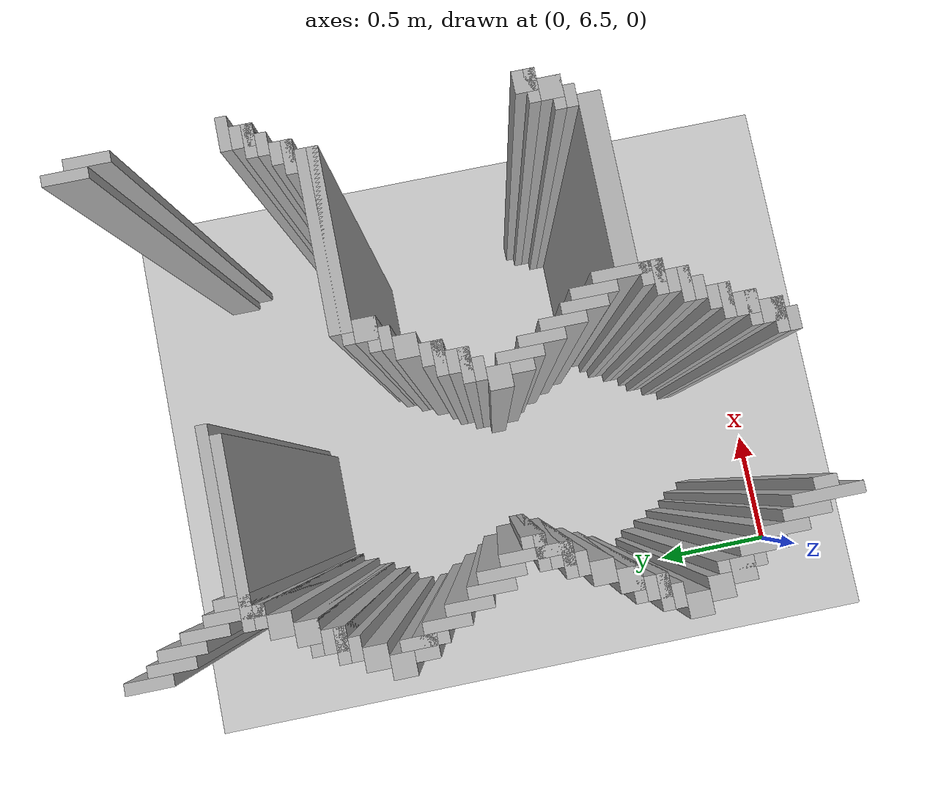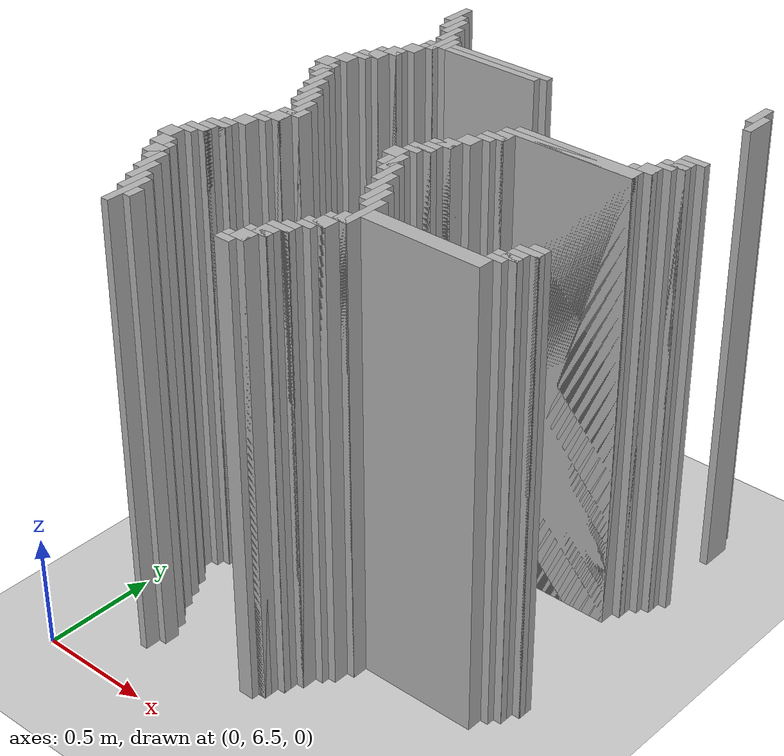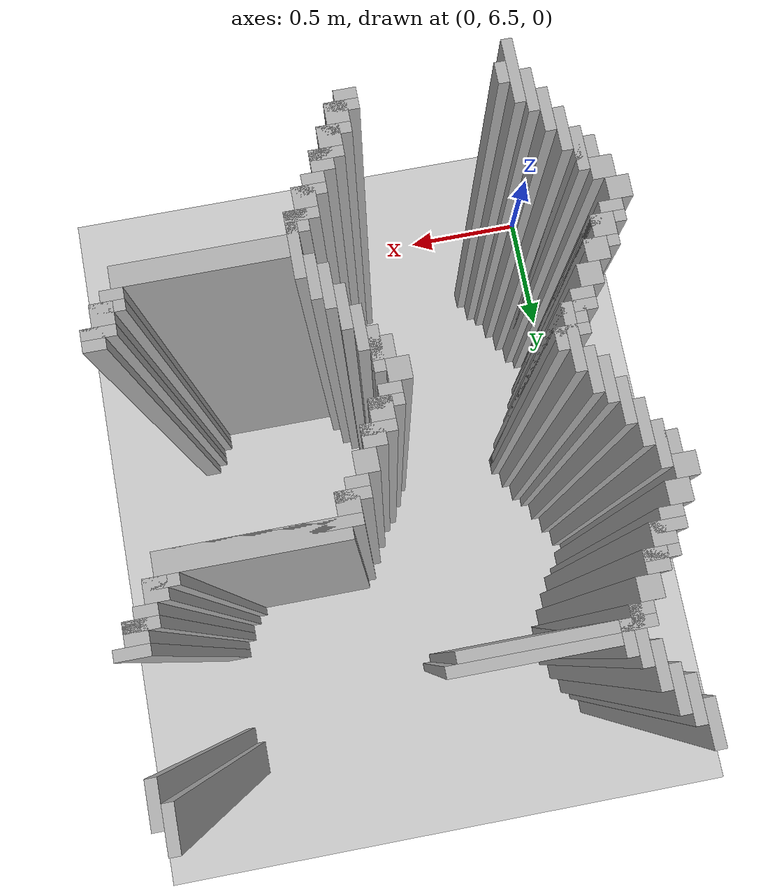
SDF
<sdf version="1.6">
 <world name="slam_world">
  <model name="ground_plane">
   <static>true</static>
   <link name="link">
    <collision name="collision">
     <geometry><plane><normal>0 0 1</normal><size>100 100</size></plane></geometry>
    </collision>
    <visual name="visual">
     <geometry><plane><normal>0 0 1</normal><size>100 100</size></plane></geometry>
     <material>
      <ambient>0.8 0.8 0.8 1</ambient>
      <diffuse>0.8 0.8 0.8 1</diffuse>
      <specular>0.8 0.8 0.8 1</specular>
     </material>
    </visual>
   </link>
  </model>
  <model name="wall_2867">
   <static>true</static>
   <pose>0.15661252900232017 8.77030162412993 1.0 0 0 0</pose>
   <link name="link">
    <collision name="collision">
     <geometry><box><size>0.03480278422273782 0.13921113689095127 2.0</size></box></geometry>
    </collision>
    <visual name="visual">
     <geometry><box><size>0.03480278422273782 0.13921113689095127 2.0</size></box></geometry>
     <material><ambient>0.5 0.5 0.5 1</ambient><diffuse>0.7 0.7 0.7 1</diffuse></material>
    </visual>
   </link>
  </model>
  <model name="wall_2868">
   <static>true</static>
   <pose>1.6183294663573085 8.77030162412993 1.0 0 0 0</pose>
   <link name="link">
    <collision name="collision">
     <geometry><box><size>0.03480278422273782 0.13921113689095127 2.0</size></box></geometry>
    </collision>
    <visual name="visual">
     <geometry><box><size>0.03480278422273782 0.13921113689095127 2.0</size></box></geometry>
     <material><ambient>0.5 0.5 0.5 1</ambient><diffuse>0.7 0.7 0.7 1</diffuse></material>
    </visual>
   </link>
  </model>
  <model name="wall_2880">
   <static>true</static>
   <pose>0.191415313225058 8.700696055684455 1.0 0 0 0</pose>
   <link name="link">
    <collision name="collision">
     <geometry><box><size>0.03480278422273782 0.13921113689095127 2.0</size></box></geometry>
    </collision>
    <visual name="visual">
     <geometry><box><size>0.03480278422273782 0.13921113689095127 2.0</size></box></geometry>
     <material><ambient>0.5 0.5 0.5 1</ambient><diffuse>0.7 0.7 0.7 1</diffuse></material>
    </visual>
   </link>
  </model>
  <model name="wall_2881">
   <static>true</static>
   <pose>1.6531322505800463 8.700696055684455 1.0 0 0 0</pose>
   <link name="link">
    <collision name="collision">
     <geometry><box><size>0.03480278422273782 0.13921113689095127 2.0</size></box></geometry>
    </collision>
    <visual name="visual">
     <geometry><box><size>0.03480278422273782 0.13921113689095127 2.0</size></box></geometry>
     <material><ambient>0.5 0.5 0.5 1</ambient><diffuse>0.7 0.7 0.7 1</diffuse></material>
    </visual>
   </link>
  </model>
  <model name="wall_2893">
   <static>true</static>
   <pose>0.2262180974477958 8.665893271461716 1.0 0 0 0</pose>
   <link name="link">
    <collision name="collision">
     <geometry><box><size>0.03480278422273782 0.13921113689095127 2.0</size></box></geometry>
    </collision>
    <visual name="visual">
     <geometry><box><size>0.03480278422273782 0.13921113689095127 2.0</size></box></geometry>
     <material><ambient>0.5 0.5 0.5 1</ambient><diffuse>0.7 0.7 0.7 1</diffuse></material>
    </visual>
   </link>
  </model>
  <model name="wall_2915">
   <static>true</static>
   <pose>0.2610208816705336 8.596287703016241 1.0 0 0 0</pose>
   <link name="link">
    <collision name="collision">
     <geometry><box><size>0.03480278422273782 0.13921113689095127 2.0</size></box></geometry>
    </collision>
    <visual name="visual">
     <geometry><box><size>0.03480278422273782 0.13921113689095127 2.0</size></box></geometry>
     <material><ambient>0.5 0.5 0.5 1</ambient><diffuse>0.7 0.7 0.7 1</diffuse></material>
    </visual>
   </link>
  </model>
  <model name="wall_2934">
   <static>true</static>
   <pose>0.29582366589327147 8.509280742459396 1.0 0 0 0</pose>
   <link name="link">
    <collision name="collision">
     <geometry><box><size>0.03480278422273782 0.17401392111368907 2.0</size></box></geometry>
    </collision>
    <visual name="visual">
     <geometry><box><size>0.03480278422273782 0.17401392111368907 2.0</size></box></geometry>
     <material><ambient>0.5 0.5 0.5 1</ambient><diffuse>0.7 0.7 0.7 1</diffuse></material>
    </visual>
   </link>
  </model>
  <model name="wall_2947">
   <static>true</static>
   <pose>0.3306264501160093 8.509280742459396 1.0 0 0 0</pose>
   <link name="link">
    <collision name="collision">
     <geometry><box><size>0.03480278422273782 0.10440835266821345 2.0</size></box></geometry>
    </collision>
    <visual name="visual">
     <geometry><box><size>0.03480278422273782 0.10440835266821345 2.0</size></box></geometry>
     <material><ambient>0.5 0.5 0.5 1</ambient><diffuse>0.7 0.7 0.7 1</diffuse></material>
    </visual>
   </link>
  </model>
  <model name="wall_2960">
   <static>true</static>
   <pose>0.5916473317865429 8.509280742459396 1.0 0 0 0</pose>
   <link name="link">
    <collision name="collision">
     <geometry><box><size>0.4872389791183295 0.03480278422273782 2.0</size></box></geometry>
    </collision>
    <visual name="visual">
     <geometry><box><size>0.4872389791183295 0.03480278422273782 2.0</size></box></geometry>
     <material><ambient>0.5 0.5 0.5 1</ambient><diffuse>0.7 0.7 0.7 1</diffuse></material>
    </visual>
   </link>
  </model>
  <model name="wall_2972">
   <static>true</static>
   <pose>0.5220417633410672 8.474477958236658 1.0 0 0 0</pose>
   <link name="link">
    <collision name="collision">
     <geometry><box><size>0.5568445475638051 0.03480278422273782 2.0</size></box></geometry>
    </collision>
    <visual name="visual">
     <geometry><box><size>0.5568445475638051 0.03480278422273782 2.0</size></box></geometry>
     <material><ambient>0.5 0.5 0.5 1</ambient><diffuse>0.7 0.7 0.7 1</diffuse></material>
    </visual>
   </link>
  </model>
  <model name="wall_2986">
   <static>true</static>
   <pose>0.27842227378190254 8.43967517401392 1.0 0 0 0</pose>
   <link name="link">
    <collision name="collision">
     <geometry><box><size>0.06960556844547564 0.03480278422273782 2.0</size></box></geometry>
    </collision>
    <visual name="visual">
     <geometry><box><size>0.06960556844547564 0.03480278422273782 2.0</size></box></geometry>
     <material><ambient>0.5 0.5 0.5 1</ambient><diffuse>0.7 0.7 0.7 1</diffuse></material>
    </visual>
   </link>
  </model>
  <model name="wall_3001">
   <static>true</static>
   <pose>0.24361948955916474 8.387470997679815 1.0 0 0 0</pose>
   <link name="link">
    <collision name="collision">
     <geometry><box><size>0.06960556844547564 0.06960556844547564 2.0</size></box></geometry>
    </collision>
    <visual name="visual">
     <geometry><box><size>0.06960556844547564 0.06960556844547564 2.0</size></box></geometry>
     <material><ambient>0.5 0.5 0.5 1</ambient><diffuse>0.7 0.7 0.7 1</diffuse></material>
    </visual>
   </link>
  </model>
  <model name="wall_3016">
   <static>true</static>
   <pose>0.2088167053364269 8.317865429234338 1.0 0 0 0</pose>
   <link name="link">
    <collision name="collision">
     <geometry><box><size>0.06960556844547564 0.06960556844547564 2.0</size></box></geometry>
    </collision>
    <visual name="visual">
     <geometry><box><size>0.06960556844547564 0.06960556844547564 2.0</size></box></geometry>
     <material><ambient>0.5 0.5 0.5 1</ambient><diffuse>0.7 0.7 0.7 1</diffuse></material>
    </visual>
   </link>
  </model>
  <model name="wall_3031">
   <static>true</static>
   <pose>0.191415313225058 8.30046403712297 1.0 0 0 0</pose>
   <link name="link">
    <collision name="collision">
     <geometry><box><size>0.10440835266821345 0.03480278422273782 2.0</size></box></geometry>
    </collision>
    <visual name="visual">
     <geometry><box><size>0.10440835266821345 0.03480278422273782 2.0</size></box></geometry>
     <material><ambient>0.5 0.5 0.5 1</ambient><diffuse>0.7 0.7 0.7 1</diffuse></material>
    </visual>
   </link>
  </model>
  <model name="wall_3032">
   <static>true</static>
   <pose>1.6531322505800463 8.30046403712297 1.0 0 0 0</pose>
   <link name="link">
    <collision name="collision">
     <geometry><box><size>0.10440835266821345 0.03480278422273782 2.0</size></box></geometry>
    </collision>
    <visual name="visual">
     <geometry><box><size>0.10440835266821345 0.03480278422273782 2.0</size></box></geometry>
     <material><ambient>0.5 0.5 0.5 1</ambient><diffuse>0.7 0.7 0.7 1</diffuse></material>
    </visual>
   </link>
  </model>
  <model name="wall_3046">
   <static>true</static>
   <pose>0.17401392111368907 8.248259860788863 1.0 0 0 0</pose>
   <link name="link">
    <collision name="collision">
     <geometry><box><size>0.06960556844547564 0.06960556844547564 2.0</size></box></geometry>
    </collision>
    <visual name="visual">
     <geometry><box><size>0.06960556844547564 0.06960556844547564 2.0</size></box></geometry>
     <material><ambient>0.5 0.5 0.5 1</ambient><diffuse>0.7 0.7 0.7 1</diffuse></material>
    </visual>
   </link>
  </model>
  <model name="wall_3047">
   <static>true</static>
   <pose>1.6357308584686774 8.248259860788863 1.0 0 0 0</pose>
   <link name="link">
    <collision name="collision">
     <geometry><box><size>0.06960556844547564 0.06960556844547564 2.0</size></box></geometry>
    </collision>
    <visual name="visual">
     <geometry><box><size>0.06960556844547564 0.06960556844547564 2.0</size></box></geometry>
     <material><ambient>0.5 0.5 0.5 1</ambient><diffuse>0.7 0.7 0.7 1</diffuse></material>
    </visual>
   </link>
  </model>
  <model name="wall_3056">
   <static>true</static>
   <pose>0.15661252900232017 8.230858468677495 1.0 0 0 0</pose>
   <link name="link">
    <collision name="collision">
     <geometry><box><size>0.10440835266821345 0.03480278422273782 2.0</size></box></geometry>
    </collision>
    <visual name="visual">
     <geometry><box><size>0.10440835266821345 0.03480278422273782 2.0</size></box></geometry>
     <material><ambient>0.5 0.5 0.5 1</ambient><diffuse>0.7 0.7 0.7 1</diffuse></material>
    </visual>
   </link>
  </model>
  <model name="wall_3057">
   <static>true</static>
   <pose>1.6183294663573085 8.230858468677495 1.0 0 0 0</pose>
   <link name="link">
    <collision name="collision">
     <geometry><box><size>0.10440835266821345 0.03480278422273782 2.0</size></box></geometry>
    </collision>
    <visual name="visual">
     <geometry><box><size>0.10440835266821345 0.03480278422273782 2.0</size></box></geometry>
     <material><ambient>0.5 0.5 0.5 1</ambient><diffuse>0.7 0.7 0.7 1</diffuse></material>
    </visual>
   </link>
  </model>
  <model name="wall_3071">
   <static>true</static>
   <pose>0.13921113689095127 8.196055684454755 1.0 0 0 0</pose>
   <link name="link">
    <collision name="collision">
     <geometry><box><size>0.06960556844547564 0.03480278422273782 2.0</size></box></geometry>
    </collision>
    <visual name="visual">
     <geometry><box><size>0.06960556844547564 0.03480278422273782 2.0</size></box></geometry>
     <material><ambient>0.5 0.5 0.5 1</ambient><diffuse>0.7 0.7 0.7 1</diffuse></material>
    </visual>
   </link>
  </model>
  <model name="wall_3072">
   <static>true</static>
   <pose>1.6009280742459395 8.196055684454755 1.0 0 0 0</pose>
   <link name="link">
    <collision name="collision">
     <geometry><box><size>0.06960556844547564 0.03480278422273782 2.0</size></box></geometry>
    </collision>
    <visual name="visual">
     <geometry><box><size>0.06960556844547564 0.03480278422273782 2.0</size></box></geometry>
     <material><ambient>0.5 0.5 0.5 1</ambient><diffuse>0.7 0.7 0.7 1</diffuse></material>
    </visual>
   </link>
  </model>
  <model name="wall_3080">
   <static>true</static>
   <pose>0.10440835266821345 8.14385150812065 1.0 0 0 0</pose>
   <link name="link">
    <collision name="collision">
     <geometry><box><size>0.06960556844547564 0.06960556844547564 2.0</size></box></geometry>
    </collision>
    <visual name="visual">
     <geometry><box><size>0.06960556844547564 0.06960556844547564 2.0</size></box></geometry>
     <material><ambient>0.5 0.5 0.5 1</ambient><diffuse>0.7 0.7 0.7 1</diffuse></material>
    </visual>
   </link>
  </model>
  <model name="wall_3081">
   <static>true</static>
   <pose>1.5661252900232019 8.14385150812065 1.0 0 0 0</pose>
   <link name="link">
    <collision name="collision">
     <geometry><box><size>0.06960556844547564 0.06960556844547564 2.0</size></box></geometry>
    </collision>
    <visual name="visual">
     <geometry><box><size>0.06960556844547564 0.06960556844547564 2.0</size></box></geometry>
     <material><ambient>0.5 0.5 0.5 1</ambient><diffuse>0.7 0.7 0.7 1</diffuse></material>
    </visual>
   </link>
  </model>
  <model name="wall_3095">
   <static>true</static>
   <pose>1.548723897911833 8.12645011600928 1.0 0 0 0</pose>
   <link name="link">
    <collision name="collision">
     <geometry><box><size>0.10440835266821345 0.03480278422273782 2.0</size></box></geometry>
    </collision>
    <visual name="visual">
     <geometry><box><size>0.10440835266821345 0.03480278422273782 2.0</size></box></geometry>
     <material><ambient>0.5 0.5 0.5 1</ambient><diffuse>0.7 0.7 0.7 1</diffuse></material>
    </visual>
   </link>
  </model>
  <model name="wall_3109">
   <static>true</static>
   <pose>0.06960556844547564 8.074245939675174 1.0 0 0 0</pose>
   <link name="link">
    <collision name="collision">
     <geometry><box><size>0.06960556844547564 0.06960556844547564 2.0</size></box></geometry>
    </collision>
    <visual name="visual">
     <geometry><box><size>0.06960556844547564 0.06960556844547564 2.0</size></box></geometry>
     <material><ambient>0.5 0.5 0.5 1</ambient><diffuse>0.7 0.7 0.7 1</diffuse></material>
    </visual>
   </link>
  </model>
  <model name="wall_3110">
   <static>true</static>
   <pose>1.2877030162412992 8.074245939675174 1.0 0 0 0</pose>
   <link name="link">
    <collision name="collision">
     <geometry><box><size>0.5568445475638051 0.06960556844547564 2.0</size></box></geometry>
    </collision>
    <visual name="visual">
     <geometry><box><size>0.5568445475638051 0.06960556844547564 2.0</size></box></geometry>
     <material><ambient>0.5 0.5 0.5 1</ambient><diffuse>0.7 0.7 0.7 1</diffuse></material>
    </visual>
   </link>
  </model>
  <model name="wall_3121">
   <static>true</static>
   <pose>0.12180974477958237 8.004640371229698 1.0 0 0 0</pose>
   <link name="link">
    <collision name="collision">
     <geometry><box><size>0.03480278422273782 0.13921113689095127 2.0</size></box></geometry>
    </collision>
    <visual name="visual">
     <geometry><box><size>0.03480278422273782 0.13921113689095127 2.0</size></box></geometry>
     <material><ambient>0.5 0.5 0.5 1</ambient><diffuse>0.7 0.7 0.7 1</diffuse></material>
    </visual>
   </link>
  </model>
  <model name="wall_3122">
   <static>true</static>
   <pose>1.2703016241299303 8.056844547563804 1.0 0 0 0</pose>
   <link name="link">
    <collision name="collision">
     <geometry><box><size>0.5916473317865429 0.03480278422273782 2.0</size></box></geometry>
    </collision>
    <visual name="visual">
     <geometry><box><size>0.5916473317865429 0.03480278422273782 2.0</size></box></geometry>
     <material><ambient>0.5 0.5 0.5 1</ambient><diffuse>0.7 0.7 0.7 1</diffuse></material>
    </visual>
   </link>
  </model>
  <model name="wall_3135">
   <static>true</static>
   <pose>0.10440835266821345 8.004640371229698 1.0 0 0 0</pose>
   <link name="link">
    <collision name="collision">
     <geometry><box><size>0.06960556844547564 0.06960556844547564 2.0</size></box></geometry>
    </collision>
    <visual name="visual">
     <geometry><box><size>0.06960556844547564 0.06960556844547564 2.0</size></box></geometry>
     <material><ambient>0.5 0.5 0.5 1</ambient><diffuse>0.7 0.7 0.7 1</diffuse></material>
    </visual>
   </link>
  </model>
  <model name="wall_3136">
   <static>true</static>
   <pose>1.0092807424593968 8.004640371229698 1.0 0 0 0</pose>
   <link name="link">
    <collision name="collision">
     <geometry><box><size>0.06960556844547564 0.06960556844547564 2.0</size></box></geometry>
    </collision>
    <visual name="visual">
     <geometry><box><size>0.06960556844547564 0.06960556844547564 2.0</size></box></geometry>
     <material><ambient>0.5 0.5 0.5 1</ambient><diffuse>0.7 0.7 0.7 1</diffuse></material>
    </visual>
   </link>
  </model>
  <model name="wall_3151">
   <static>true</static>
   <pose>0.15661252900232017 7.935034802784222 1.0 0 0 0</pose>
   <link name="link">
    <collision name="collision">
     <geometry><box><size>0.03480278422273782 0.13921113689095127 2.0</size></box></geometry>
    </collision>
    <visual name="visual">
     <geometry><box><size>0.03480278422273782 0.13921113689095127 2.0</size></box></geometry>
     <material><ambient>0.5 0.5 0.5 1</ambient><diffuse>0.7 0.7 0.7 1</diffuse></material>
    </visual>
   </link>
  </model>
  <model name="wall_3152">
   <static>true</static>
   <pose>0.9918793503480278 7.987238979118329 1.0 0 0 0</pose>
   <link name="link">
    <collision name="collision">
     <geometry><box><size>0.10440835266821345 0.03480278422273782 2.0</size></box></geometry>
    </collision>
    <visual name="visual">
     <geometry><box><size>0.10440835266821345 0.03480278422273782 2.0</size></box></geometry>
     <material><ambient>0.5 0.5 0.5 1</ambient><diffuse>0.7 0.7 0.7 1</diffuse></material>
    </visual>
   </link>
  </model>
  <model name="wall_3167">
   <static>true</static>
   <pose>0.974477958236659 7.952436194895592 1.0 0 0 0</pose>
   <link name="link">
    <collision name="collision">
     <geometry><box><size>0.06960556844547564 0.03480278422273782 2.0</size></box></geometry>
    </collision>
    <visual name="visual">
     <geometry><box><size>0.06960556844547564 0.03480278422273782 2.0</size></box></geometry>
     <material><ambient>0.5 0.5 0.5 1</ambient><diffuse>0.7 0.7 0.7 1</diffuse></material>
    </visual>
   </link>
  </model>
  <model name="wall_3178">
   <static>true</static>
   <pose>0.191415313225058 7.865429234338746 1.0 0 0 0</pose>
   <link name="link">
    <collision name="collision">
     <geometry><box><size>0.03480278422273782 0.13921113689095127 2.0</size></box></geometry>
    </collision>
    <visual name="visual">
     <geometry><box><size>0.03480278422273782 0.13921113689095127 2.0</size></box></geometry>
     <material><ambient>0.5 0.5 0.5 1</ambient><diffuse>0.7 0.7 0.7 1</diffuse></material>
    </visual>
   </link>
  </model>
  <model name="wall_3179">
   <static>true</static>
   <pose>0.9396751740139211 7.900232018561485 1.0 0 0 0</pose>
   <link name="link">
    <collision name="collision">
     <geometry><box><size>0.06960556844547564 0.06960556844547564 2.0</size></box></geometry>
    </collision>
    <visual name="visual">
     <geometry><box><size>0.06960556844547564 0.06960556844547564 2.0</size></box></geometry>
     <material><ambient>0.5 0.5 0.5 1</ambient><diffuse>0.7 0.7 0.7 1</diffuse></material>
    </visual>
   </link>
  </model>
  <model name="wall_3194">
   <static>true</static>
   <pose>0.2262180974477958 7.795823665893272 1.0 0 0 0</pose>
   <link name="link">
    <collision name="collision">
     <geometry><box><size>0.03480278422273782 0.13921113689095127 2.0</size></box></geometry>
    </collision>
    <visual name="visual">
     <geometry><box><size>0.03480278422273782 0.13921113689095127 2.0</size></box></geometry>
     <material><ambient>0.5 0.5 0.5 1</ambient><diffuse>0.7 0.7 0.7 1</diffuse></material>
    </visual>
   </link>
  </model>
  <model name="wall_3195">
   <static>true</static>
   <pose>0.9048723897911832 7.830626450116009 1.0 0 0 0</pose>
   <link name="link">
    <collision name="collision">
     <geometry><box><size>0.06960556844547564 0.06960556844547564 2.0</size></box></geometry>
    </collision>
    <visual name="visual">
     <geometry><box><size>0.06960556844547564 0.06960556844547564 2.0</size></box></geometry>
     <material><ambient>0.5 0.5 0.5 1</ambient><diffuse>0.7 0.7 0.7 1</diffuse></material>
    </visual>
   </link>
  </model>
  <model name="wall_3210">
   <static>true</static>
   <pose>0.2610208816705336 7.761020881670533 1.0 0 0 0</pose>
   <link name="link">
    <collision name="collision">
     <geometry><box><size>0.03480278422273782 0.13921113689095127 2.0</size></box></geometry>
    </collision>
    <visual name="visual">
     <geometry><box><size>0.03480278422273782 0.13921113689095127 2.0</size></box></geometry>
     <material><ambient>0.5 0.5 0.5 1</ambient><diffuse>0.7 0.7 0.7 1</diffuse></material>
    </visual>
   </link>
  </model>
  <model name="wall_3211">
   <static>true</static>
   <pose>0.8874709976798143 7.81322505800464 1.0 0 0 0</pose>
   <link name="link">
    <collision name="collision">
     <geometry><box><size>0.10440835266821345 0.03480278422273782 2.0</size></box></geometry>
    </collision>
    <visual name="visual">
     <geometry><box><size>0.10440835266821345 0.03480278422273782 2.0</size></box></geometry>
     <material><ambient>0.5 0.5 0.5 1</ambient><diffuse>0.7 0.7 0.7 1</diffuse></material>
    </visual>
   </link>
  </model>
  <model name="wall_3226">
   <static>true</static>
   <pose>0.8700696055684455 7.761020881670533 1.0 0 0 0</pose>
   <link name="link">
    <collision name="collision">
     <geometry><box><size>0.06960556844547564 0.06960556844547564 2.0</size></box></geometry>
    </collision>
    <visual name="visual">
     <geometry><box><size>0.06960556844547564 0.06960556844547564 2.0</size></box></geometry>
     <material><ambient>0.5 0.5 0.5 1</ambient><diffuse>0.7 0.7 0.7 1</diffuse></material>
    </visual>
   </link>
  </model>
  <model name="wall_3235">
   <static>true</static>
   <pose>0.29582366589327147 7.65661252900232 1.0 0 0 0</pose>
   <link name="link">
    <collision name="collision">
     <geometry><box><size>0.03480278422273782 0.2088167053364269 2.0</size></box></geometry>
    </collision>
    <visual name="visual">
     <geometry><box><size>0.03480278422273782 0.2088167053364269 2.0</size></box></geometry>
     <material><ambient>0.5 0.5 0.5 1</ambient><diffuse>0.7 0.7 0.7 1</diffuse></material>
    </visual>
   </link>
  </model>
  <model name="wall_3236">
   <static>true</static>
   <pose>0.8526682134570766 7.743619489559165 1.0 0 0 0</pose>
   <link name="link">
    <collision name="collision">
     <geometry><box><size>0.10440835266821345 0.03480278422273782 2.0</size></box></geometry>
    </collision>
    <visual name="visual">
     <geometry><box><size>0.10440835266821345 0.03480278422273782 2.0</size></box></geometry>
     <material><ambient>0.5 0.5 0.5 1</ambient><diffuse>0.7 0.7 0.7 1</diffuse></material>
    </visual>
   </link>
  </model>
  <model name="wall_3251">
   <static>true</static>
   <pose>0.8352668213457076 7.708816705336426 1.0 0 0 0</pose>
   <link name="link">
    <collision name="collision">
     <geometry><box><size>0.06960556844547564 0.03480278422273782 2.0</size></box></geometry>
    </collision>
    <visual name="visual">
     <geometry><box><size>0.06960556844547564 0.03480278422273782 2.0</size></box></geometry>
     <material><ambient>0.5 0.5 0.5 1</ambient><diffuse>0.7 0.7 0.7 1</diffuse></material>
    </visual>
   </link>
  </model>
  <model name="wall_3260">
   <static>true</static>
   <pose>0.3306264501160093 7.65661252900232 1.0 0 0 0</pose>
   <link name="link">
    <collision name="collision">
     <geometry><box><size>0.03480278422273782 0.06960556844547564 2.0</size></box></geometry>
    </collision>
    <visual name="visual">
     <geometry><box><size>0.03480278422273782 0.06960556844547564 2.0</size></box></geometry>
     <material><ambient>0.5 0.5 0.5 1</ambient><diffuse>0.7 0.7 0.7 1</diffuse></material>
    </visual>
   </link>
  </model>
  <model name="wall_3261">
   <static>true</static>
   <pose>0.8004640371229698 7.65661252900232 1.0 0 0 0</pose>
   <link name="link">
    <collision name="collision">
     <geometry><box><size>0.06960556844547564 0.06960556844547564 2.0</size></box></geometry>
    </collision>
    <visual name="visual">
     <geometry><box><size>0.06960556844547564 0.06960556844547564 2.0</size></box></geometry>
     <material><ambient>0.5 0.5 0.5 1</ambient><diffuse>0.7 0.7 0.7 1</diffuse></material>
    </visual>
   </link>
  </model>
  <model name="wall_3276">
   <static>true</static>
   <pose>0.29582366589327147 7.6392111368909505 1.0 0 0 0</pose>
   <link name="link">
    <collision name="collision">
     <geometry><box><size>0.10440835266821345 0.03480278422273782 2.0</size></box></geometry>
    </collision>
    <visual name="visual">
     <geometry><box><size>0.10440835266821345 0.03480278422273782 2.0</size></box></geometry>
     <material><ambient>0.5 0.5 0.5 1</ambient><diffuse>0.7 0.7 0.7 1</diffuse></material>
    </visual>
   </link>
  </model>
  <model name="wall_3277">
   <static>true</static>
   <pose>0.8526682134570766 7.587006960556844 1.0 0 0 0</pose>
   <link name="link">
    <collision name="collision">
     <geometry><box><size>0.03480278422273782 0.13921113689095127 2.0</size></box></geometry>
    </collision>
    <visual name="visual">
     <geometry><box><size>0.03480278422273782 0.13921113689095127 2.0</size></box></geometry>
     <material><ambient>0.5 0.5 0.5 1</ambient><diffuse>0.7 0.7 0.7 1</diffuse></material>
    </visual>
   </link>
  </model>
  <model name="wall_3290">
   <static>true</static>
   <pose>0.27842227378190254 7.587006960556844 1.0 0 0 0</pose>
   <link name="link">
    <collision name="collision">
     <geometry><box><size>0.06960556844547564 0.06960556844547564 2.0</size></box></geometry>
    </collision>
    <visual name="visual">
     <geometry><box><size>0.06960556844547564 0.06960556844547564 2.0</size></box></geometry>
     <material><ambient>0.5 0.5 0.5 1</ambient><diffuse>0.7 0.7 0.7 1</diffuse></material>
    </visual>
   </link>
  </model>
  <model name="wall_3291">
   <static>true</static>
   <pose>0.8352668213457076 7.587006960556844 1.0 0 0 0</pose>
   <link name="link">
    <collision name="collision">
     <geometry><box><size>0.06960556844547564 0.06960556844547564 2.0</size></box></geometry>
    </collision>
    <visual name="visual">
     <geometry><box><size>0.06960556844547564 0.06960556844547564 2.0</size></box></geometry>
     <material><ambient>0.5 0.5 0.5 1</ambient><diffuse>0.7 0.7 0.7 1</diffuse></material>
    </visual>
   </link>
  </model>
  <model name="wall_3306">
   <static>true</static>
   <pose>0.2610208816705336 7.569605568445476 1.0 0 0 0</pose>
   <link name="link">
    <collision name="collision">
     <geometry><box><size>0.10440835266821345 0.03480278422273782 2.0</size></box></geometry>
    </collision>
    <visual name="visual">
     <geometry><box><size>0.10440835266821345 0.03480278422273782 2.0</size></box></geometry>
     <material><ambient>0.5 0.5 0.5 1</ambient><diffuse>0.7 0.7 0.7 1</diffuse></material>
    </visual>
   </link>
  </model>
  <model name="wall_3307">
   <static>true</static>
   <pose>0.8874709976798143 7.517401392111369 1.0 0 0 0</pose>
   <link name="link">
    <collision name="collision">
     <geometry><box><size>0.03480278422273782 0.13921113689095127 2.0</size></box></geometry>
    </collision>
    <visual name="visual">
     <geometry><box><size>0.03480278422273782 0.13921113689095127 2.0</size></box></geometry>
     <material><ambient>0.5 0.5 0.5 1</ambient><diffuse>0.7 0.7 0.7 1</diffuse></material>
    </visual>
   </link>
  </model>
  <model name="wall_3322">
   <static>true</static>
   <pose>0.24361948955916474 7.534802784222737 1.0 0 0 0</pose>
   <link name="link">
    <collision name="collision">
     <geometry><box><size>0.06960556844547564 0.03480278422273782 2.0</size></box></geometry>
    </collision>
    <visual name="visual">
     <geometry><box><size>0.06960556844547564 0.03480278422273782 2.0</size></box></geometry>
     <material><ambient>0.5 0.5 0.5 1</ambient><diffuse>0.7 0.7 0.7 1</diffuse></material>
    </visual>
   </link>
  </model>
  <model name="wall_3333">
   <static>true</static>
   <pose>0.2088167053364269 7.48259860788863 1.0 0 0 0</pose>
   <link name="link">
    <collision name="collision">
     <geometry><box><size>0.06960556844547564 0.06960556844547564 2.0</size></box></geometry>
    </collision>
    <visual name="visual">
     <geometry><box><size>0.06960556844547564 0.06960556844547564 2.0</size></box></geometry>
     <material><ambient>0.5 0.5 0.5 1</ambient><diffuse>0.7 0.7 0.7 1</diffuse></material>
    </visual>
   </link>
  </model>
  <model name="wall_3334">
   <static>true</static>
   <pose>0.9222737819025522 7.447795823665893 1.0 0 0 0</pose>
   <link name="link">
    <collision name="collision">
     <geometry><box><size>0.03480278422273782 0.13921113689095127 2.0</size></box></geometry>
    </collision>
    <visual name="visual">
     <geometry><box><size>0.03480278422273782 0.13921113689095127 2.0</size></box></geometry>
     <material><ambient>0.5 0.5 0.5 1</ambient><diffuse>0.7 0.7 0.7 1</diffuse></material>
    </visual>
   </link>
  </model>
  <model name="wall_3349">
   <static>true</static>
   <pose>0.17401392111368907 7.412993039443156 1.0 0 0 0</pose>
   <link name="link">
    <collision name="collision">
     <geometry><box><size>0.06960556844547564 0.06960556844547564 2.0</size></box></geometry>
    </collision>
    <visual name="visual">
     <geometry><box><size>0.06960556844547564 0.06960556844547564 2.0</size></box></geometry>
     <material><ambient>0.5 0.5 0.5 1</ambient><diffuse>0.7 0.7 0.7 1</diffuse></material>
    </visual>
   </link>
  </model>
  <model name="wall_3350">
   <static>true</static>
   <pose>0.95707656612529 7.378190255220417 1.0 0 0 0</pose>
   <link name="link">
    <collision name="collision">
     <geometry><box><size>0.03480278422273782 0.13921113689095127 2.0</size></box></geometry>
    </collision>
    <visual name="visual">
     <geometry><box><size>0.03480278422273782 0.13921113689095127 2.0</size></box></geometry>
     <material><ambient>0.5 0.5 0.5 1</ambient><diffuse>0.7 0.7 0.7 1</diffuse></material>
    </visual>
   </link>
  </model>
  <model name="wall_3351">
   <static>true</static>
   <pose>1.6357308584686774 7.412993039443156 1.0 0 0 0</pose>
   <link name="link">
    <collision name="collision">
     <geometry><box><size>0.06960556844547564 0.06960556844547564 2.0</size></box></geometry>
    </collision>
    <visual name="visual">
     <geometry><box><size>0.06960556844547564 0.06960556844547564 2.0</size></box></geometry>
     <material><ambient>0.5 0.5 0.5 1</ambient><diffuse>0.7 0.7 0.7 1</diffuse></material>
    </visual>
   </link>
  </model>
  <model name="wall_3365">
   <static>true</static>
   <pose>0.15661252900232017 7.395591647331786 1.0 0 0 0</pose>
   <link name="link">
    <collision name="collision">
     <geometry><box><size>0.10440835266821345 0.03480278422273782 2.0</size></box></geometry>
    </collision>
    <visual name="visual">
     <geometry><box><size>0.10440835266821345 0.03480278422273782 2.0</size></box></geometry>
     <material><ambient>0.5 0.5 0.5 1</ambient><diffuse>0.7 0.7 0.7 1</diffuse></material>
    </visual>
   </link>
  </model>
  <model name="wall_3366">
   <static>true</static>
   <pose>0.9918793503480278 7.34338747099768 1.0 0 0 0</pose>
   <link name="link">
    <collision name="collision">
     <geometry><box><size>0.03480278422273782 0.13921113689095127 2.0</size></box></geometry>
    </collision>
    <visual name="visual">
     <geometry><box><size>0.03480278422273782 0.13921113689095127 2.0</size></box></geometry>
     <material><ambient>0.5 0.5 0.5 1</ambient><diffuse>0.7 0.7 0.7 1</diffuse></material>
    </visual>
   </link>
  </model>
  <model name="wall_3367">
   <static>true</static>
   <pose>1.6183294663573085 7.395591647331786 1.0 0 0 0</pose>
   <link name="link">
    <collision name="collision">
     <geometry><box><size>0.10440835266821345 0.03480278422273782 2.0</size></box></geometry>
    </collision>
    <visual name="visual">
     <geometry><box><size>0.10440835266821345 0.03480278422273782 2.0</size></box></geometry>
     <material><ambient>0.5 0.5 0.5 1</ambient><diffuse>0.7 0.7 0.7 1</diffuse></material>
    </visual>
   </link>
  </model>
  <model name="wall_3381">
   <static>true</static>
   <pose>0.13921113689095127 7.34338747099768 1.0 0 0 0</pose>
   <link name="link">
    <collision name="collision">
     <geometry><box><size>0.06960556844547564 0.06960556844547564 2.0</size></box></geometry>
    </collision>
    <visual name="visual">
     <geometry><box><size>0.06960556844547564 0.06960556844547564 2.0</size></box></geometry>
     <material><ambient>0.5 0.5 0.5 1</ambient><diffuse>0.7 0.7 0.7 1</diffuse></material>
    </visual>
   </link>
  </model>
  <model name="wall_3382">
   <static>true</static>
   <pose>1.6009280742459395 7.34338747099768 1.0 0 0 0</pose>
   <link name="link">
    <collision name="collision">
     <geometry><box><size>0.06960556844547564 0.06960556844547564 2.0</size></box></geometry>
    </collision>
    <visual name="visual">
     <geometry><box><size>0.06960556844547564 0.06960556844547564 2.0</size></box></geometry>
     <material><ambient>0.5 0.5 0.5 1</ambient><diffuse>0.7 0.7 0.7 1</diffuse></material>
    </visual>
   </link>
  </model>
  <model name="wall_3390">
   <static>true</static>
   <pose>0.12180974477958237 7.32598607888631 1.0 0 0 0</pose>
   <link name="link">
    <collision name="collision">
     <geometry><box><size>0.10440835266821345 0.03480278422273782 2.0</size></box></geometry>
    </collision>
    <visual name="visual">
     <geometry><box><size>0.10440835266821345 0.03480278422273782 2.0</size></box></geometry>
     <material><ambient>0.5 0.5 0.5 1</ambient><diffuse>0.7 0.7 0.7 1</diffuse></material>
    </visual>
   </link>
  </model>
  <model name="wall_3391">
   <static>true</static>
   <pose>1.0266821345707655 7.238979118329466 1.0 0 0 0</pose>
   <link name="link">
    <collision name="collision">
     <geometry><box><size>0.03480278422273782 0.2088167053364269 2.0</size></box></geometry>
    </collision>
    <visual name="visual">
     <geometry><box><size>0.03480278422273782 0.2088167053364269 2.0</size></box></geometry>
     <material><ambient>0.5 0.5 0.5 1</ambient><diffuse>0.7 0.7 0.7 1</diffuse></material>
    </visual>
   </link>
  </model>
  <model name="wall_3392">
   <static>true</static>
   <pose>1.5835266821345706 7.32598607888631 1.0 0 0 0</pose>
   <link name="link">
    <collision name="collision">
     <geometry><box><size>0.10440835266821345 0.03480278422273782 2.0</size></box></geometry>
    </collision>
    <visual name="visual">
     <geometry><box><size>0.10440835266821345 0.03480278422273782 2.0</size></box></geometry>
     <material><ambient>0.5 0.5 0.5 1</ambient><diffuse>0.7 0.7 0.7 1</diffuse></material>
    </visual>
   </link>
  </model>
  <model name="wall_3406">
   <static>true</static>
   <pose>0.10440835266821345 7.291183294663573 1.0 0 0 0</pose>
   <link name="link">
    <collision name="collision">
     <geometry><box><size>0.06960556844547564 0.03480278422273782 2.0</size></box></geometry>
    </collision>
    <visual name="visual">
     <geometry><box><size>0.06960556844547564 0.03480278422273782 2.0</size></box></geometry>
     <material><ambient>0.5 0.5 0.5 1</ambient><diffuse>0.7 0.7 0.7 1</diffuse></material>
    </visual>
   </link>
  </model>
  <model name="wall_3407">
   <static>true</static>
   <pose>1.5661252900232019 7.291183294663573 1.0 0 0 0</pose>
   <link name="link">
    <collision name="collision">
     <geometry><box><size>0.06960556844547564 0.03480278422273782 2.0</size></box></geometry>
    </collision>
    <visual name="visual">
     <geometry><box><size>0.06960556844547564 0.03480278422273782 2.0</size></box></geometry>
     <material><ambient>0.5 0.5 0.5 1</ambient><diffuse>0.7 0.7 0.7 1</diffuse></material>
    </visual>
   </link>
  </model>
  <model name="wall_3415">
   <static>true</static>
   <pose>0.06960556844547564 7.238979118329466 1.0 0 0 0</pose>
   <link name="link">
    <collision name="collision">
     <geometry><box><size>0.06960556844547564 0.06960556844547564 2.0</size></box></geometry>
    </collision>
    <visual name="visual">
     <geometry><box><size>0.06960556844547564 0.06960556844547564 2.0</size></box></geometry>
     <material><ambient>0.5 0.5 0.5 1</ambient><diffuse>0.7 0.7 0.7 1</diffuse></material>
    </visual>
   </link>
  </model>
  <model name="wall_3416">
   <static>true</static>
   <pose>1.3051044083526682 7.238979118329466 1.0 0 0 0</pose>
   <link name="link">
    <collision name="collision">
     <geometry><box><size>0.5220417633410672 0.06960556844547564 2.0</size></box></geometry>
    </collision>
    <visual name="visual">
     <geometry><box><size>0.5220417633410672 0.06960556844547564 2.0</size></box></geometry>
     <material><ambient>0.5 0.5 0.5 1</ambient><diffuse>0.7 0.7 0.7 1</diffuse></material>
    </visual>
   </link>
  </model>
  <model name="wall_3427">
   <static>true</static>
   <pose>0.10440835266821345 7.16937354988399 1.0 0 0 0</pose>
   <link name="link">
    <collision name="collision">
     <geometry><box><size>0.06960556844547564 0.06960556844547564 2.0</size></box></geometry>
    </collision>
    <visual name="visual">
     <geometry><box><size>0.06960556844547564 0.06960556844547564 2.0</size></box></geometry>
     <material><ambient>0.5 0.5 0.5 1</ambient><diffuse>0.7 0.7 0.7 1</diffuse></material>
    </visual>
   </link>
  </model>
  <model name="wall_3428">
   <static>true</static>
   <pose>1.0092807424593968 7.16937354988399 1.0 0 0 0</pose>
   <link name="link">
    <collision name="collision">
     <geometry><box><size>0.06960556844547564 0.06960556844547564 2.0</size></box></geometry>
    </collision>
    <visual name="visual">
     <geometry><box><size>0.06960556844547564 0.06960556844547564 2.0</size></box></geometry>
     <material><ambient>0.5 0.5 0.5 1</ambient><diffuse>0.7 0.7 0.7 1</diffuse></material>
    </visual>
   </link>
  </model>
  <model name="wall_3439">
   <static>true</static>
   <pose>0.15661252900232017 7.099767981438514 1.0 0 0 0</pose>
   <link name="link">
    <collision name="collision">
     <geometry><box><size>0.03480278422273782 0.13921113689095127 2.0</size></box></geometry>
    </collision>
    <visual name="visual">
     <geometry><box><size>0.03480278422273782 0.13921113689095127 2.0</size></box></geometry>
     <material><ambient>0.5 0.5 0.5 1</ambient><diffuse>0.7 0.7 0.7 1</diffuse></material>
    </visual>
   </link>
  </model>
  <model name="wall_3440">
   <static>true</static>
   <pose>0.9918793503480278 7.151972157772621 1.0 0 0 0</pose>
   <link name="link">
    <collision name="collision">
     <geometry><box><size>0.10440835266821345 0.03480278422273782 2.0</size></box></geometry>
    </collision>
    <visual name="visual">
     <geometry><box><size>0.10440835266821345 0.03480278422273782 2.0</size></box></geometry>
     <material><ambient>0.5 0.5 0.5 1</ambient><diffuse>0.7 0.7 0.7 1</diffuse></material>
    </visual>
   </link>
  </model>
  <model name="wall_3451">
   <static>true</static>
   <pose>0.13921113689095127 7.099767981438514 1.0 0 0 0</pose>
   <link name="link">
    <collision name="collision">
     <geometry><box><size>0.06960556844547564 0.06960556844547564 2.0</size></box></geometry>
    </collision>
    <visual name="visual">
     <geometry><box><size>0.06960556844547564 0.06960556844547564 2.0</size></box></geometry>
     <material><ambient>0.5 0.5 0.5 1</ambient><diffuse>0.7 0.7 0.7 1</diffuse></material>
    </visual>
   </link>
  </model>
  <model name="wall_3452">
   <static>true</static>
   <pose>0.974477958236659 7.099767981438514 1.0 0 0 0</pose>
   <link name="link">
    <collision name="collision">
     <geometry><box><size>0.06960556844547564 0.06960556844547564 2.0</size></box></geometry>
    </collision>
    <visual name="visual">
     <geometry><box><size>0.06960556844547564 0.06960556844547564 2.0</size></box></geometry>
     <material><ambient>0.5 0.5 0.5 1</ambient><diffuse>0.7 0.7 0.7 1</diffuse></material>
    </visual>
   </link>
  </model>
  <model name="wall_3463">
   <static>true</static>
   <pose>0.191415313225058 7.03016241299304 1.0 0 0 0</pose>
   <link name="link">
    <collision name="collision">
     <geometry><box><size>0.03480278422273782 0.13921113689095127 2.0</size></box></geometry>
    </collision>
    <visual name="visual">
     <geometry><box><size>0.03480278422273782 0.13921113689095127 2.0</size></box></geometry>
     <material><ambient>0.5 0.5 0.5 1</ambient><diffuse>0.7 0.7 0.7 1</diffuse></material>
    </visual>
   </link>
  </model>
  <model name="wall_3464">
   <static>true</static>
   <pose>0.95707656612529 7.082366589327146 1.0 0 0 0</pose>
   <link name="link">
    <collision name="collision">
     <geometry><box><size>0.10440835266821345 0.03480278422273782 2.0</size></box></geometry>
    </collision>
    <visual name="visual">
     <geometry><box><size>0.10440835266821345 0.03480278422273782 2.0</size></box></geometry>
     <material><ambient>0.5 0.5 0.5 1</ambient><diffuse>0.7 0.7 0.7 1</diffuse></material>
    </visual>
   </link>
  </model>
  <model name="wall_3475">
   <static>true</static>
   <pose>0.9396751740139211 7.047563805104408 1.0 0 0 0</pose>
   <link name="link">
    <collision name="collision">
     <geometry><box><size>0.06960556844547564 0.03480278422273782 2.0</size></box></geometry>
    </collision>
    <visual name="visual">
     <geometry><box><size>0.06960556844547564 0.03480278422273782 2.0</size></box></geometry>
     <material><ambient>0.5 0.5 0.5 1</ambient><diffuse>0.7 0.7 0.7 1</diffuse></material>
    </visual>
   </link>
  </model>
  <model name="wall_3482">
   <static>true</static>
   <pose>0.2262180974477958 6.960556844547564 1.0 0 0 0</pose>
   <link name="link">
    <collision name="collision">
     <geometry><box><size>0.03480278422273782 0.13921113689095127 2.0</size></box></geometry>
    </collision>
    <visual name="visual">
     <geometry><box><size>0.03480278422273782 0.13921113689095127 2.0</size></box></geometry>
     <material><ambient>0.5 0.5 0.5 1</ambient><diffuse>0.7 0.7 0.7 1</diffuse></material>
    </visual>
   </link>
  </model>
  <model name="wall_3483">
   <static>true</static>
   <pose>0.9048723897911832 6.995359628770301 1.0 0 0 0</pose>
   <link name="link">
    <collision name="collision">
     <geometry><box><size>0.06960556844547564 0.06960556844547564 2.0</size></box></geometry>
    </collision>
    <visual name="visual">
     <geometry><box><size>0.06960556844547564 0.06960556844547564 2.0</size></box></geometry>
     <material><ambient>0.5 0.5 0.5 1</ambient><diffuse>0.7 0.7 0.7 1</diffuse></material>
    </visual>
   </link>
  </model>
  <model name="wall_3494">
   <static>true</static>
   <pose>0.8874709976798143 6.977958236658933 1.0 0 0 0</pose>
   <link name="link">
    <collision name="collision">
     <geometry><box><size>0.10440835266821345 0.03480278422273782 2.0</size></box></geometry>
    </collision>
    <visual name="visual">
     <geometry><box><size>0.10440835266821345 0.03480278422273782 2.0</size></box></geometry>
     <material><ambient>0.5 0.5 0.5 1</ambient><diffuse>0.7 0.7 0.7 1</diffuse></material>
    </visual>
   </link>
  </model>
  <model name="wall_3501">
   <static>true</static>
   <pose>0.2610208816705336 6.890951276102088 1.0 0 0 0</pose>
   <link name="link">
    <collision name="collision">
     <geometry><box><size>0.03480278422273782 0.13921113689095127 2.0</size></box></geometry>
    </collision>
    <visual name="visual">
     <geometry><box><size>0.03480278422273782 0.13921113689095127 2.0</size></box></geometry>
     <material><ambient>0.5 0.5 0.5 1</ambient><diffuse>0.7 0.7 0.7 1</diffuse></material>
    </visual>
   </link>
  </model>
  <model name="wall_3502">
   <static>true</static>
   <pose>0.8700696055684455 6.9257540603248255 1.0 0 0 0</pose>
   <link name="link">
    <collision name="collision">
     <geometry><box><size>0.06960556844547564 0.06960556844547564 2.0</size></box></geometry>
    </collision>
    <visual name="visual">
     <geometry><box><size>0.06960556844547564 0.06960556844547564 2.0</size></box></geometry>
     <material><ambient>0.5 0.5 0.5 1</ambient><diffuse>0.7 0.7 0.7 1</diffuse></material>
    </visual>
   </link>
  </model>
  <model name="wall_3513">
   <static>true</static>
   <pose>0.29582366589327147 6.821345707656612 1.0 0 0 0</pose>
   <link name="link">
    <collision name="collision">
     <geometry><box><size>0.03480278422273782 0.2088167053364269 2.0</size></box></geometry>
    </collision>
    <visual name="visual">
     <geometry><box><size>0.03480278422273782 0.2088167053364269 2.0</size></box></geometry>
     <material><ambient>0.5 0.5 0.5 1</ambient><diffuse>0.7 0.7 0.7 1</diffuse></material>
    </visual>
   </link>
  </model>
  <model name="wall_3514">
   <static>true</static>
   <pose>0.8526682134570766 6.908352668213457 1.0 0 0 0</pose>
   <link name="link">
    <collision name="collision">
     <geometry><box><size>0.10440835266821345 0.03480278422273782 2.0</size></box></geometry>
    </collision>
    <visual name="visual">
     <geometry><box><size>0.10440835266821345 0.03480278422273782 2.0</size></box></geometry>
     <material><ambient>0.5 0.5 0.5 1</ambient><diffuse>0.7 0.7 0.7 1</diffuse></material>
    </visual>
   </link>
  </model>
  <model name="wall_3525">
   <static>true</static>
   <pose>0.8352668213457076 6.85614849187935 1.0 0 0 0</pose>
   <link name="link">
    <collision name="collision">
     <geometry><box><size>0.06960556844547564 0.06960556844547564 2.0</size></box></geometry>
    </collision>
    <visual name="visual">
     <geometry><box><size>0.06960556844547564 0.06960556844547564 2.0</size></box></geometry>
     <material><ambient>0.5 0.5 0.5 1</ambient><diffuse>0.7 0.7 0.7 1</diffuse></material>
    </visual>
   </link>
  </model>
  <model name="wall_3532">
   <static>true</static>
   <pose>0.3306264501160093 6.821345707656612 1.0 0 0 0</pose>
   <link name="link">
    <collision name="collision">
     <geometry><box><size>0.03480278422273782 0.06960556844547564 2.0</size></box></geometry>
    </collision>
    <visual name="visual">
     <geometry><box><size>0.03480278422273782 0.06960556844547564 2.0</size></box></geometry>
     <material><ambient>0.5 0.5 0.5 1</ambient><diffuse>0.7 0.7 0.7 1</diffuse></material>
    </visual>
   </link>
  </model>
  <model name="wall_3533">
   <static>true</static>
   <pose>0.8178654292343387 6.838747099767981 1.0 0 0 0</pose>
   <link name="link">
    <collision name="collision">
     <geometry><box><size>0.10440835266821345 0.03480278422273782 2.0</size></box></geometry>
    </collision>
    <visual name="visual">
     <geometry><box><size>0.10440835266821345 0.03480278422273782 2.0</size></box></geometry>
     <material><ambient>0.5 0.5 0.5 1</ambient><diffuse>0.7 0.7 0.7 1</diffuse></material>
    </visual>
   </link>
  </model>
  <model name="wall_3546">
   <static>true</static>
   <pose>0.8004640371229698 6.803944315545244 1.0 0 0 0</pose>
   <link name="link">
    <collision name="collision">
     <geometry><box><size>0.06960556844547564 0.03480278422273782 2.0</size></box></geometry>
    </collision>
    <visual name="visual">
     <geometry><box><size>0.06960556844547564 0.03480278422273782 2.0</size></box></geometry>
     <material><ambient>0.5 0.5 0.5 1</ambient><diffuse>0.7 0.7 0.7 1</diffuse></material>
    </visual>
   </link>
  </model>
 </world>
</sdf>
